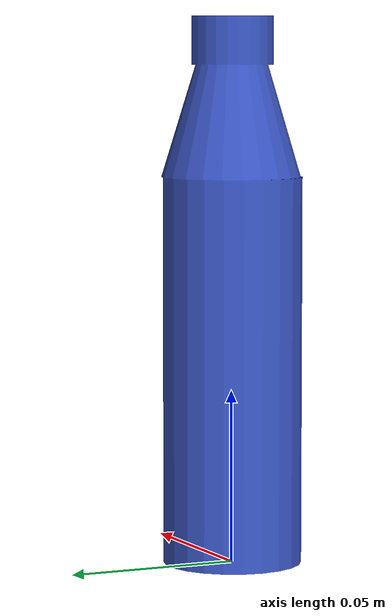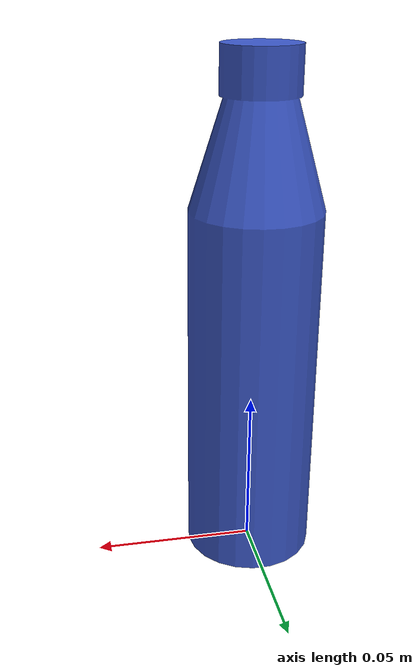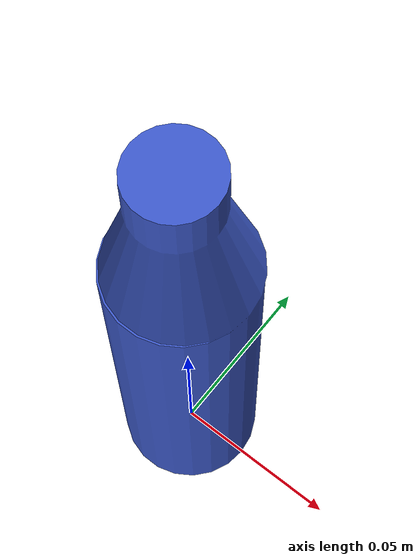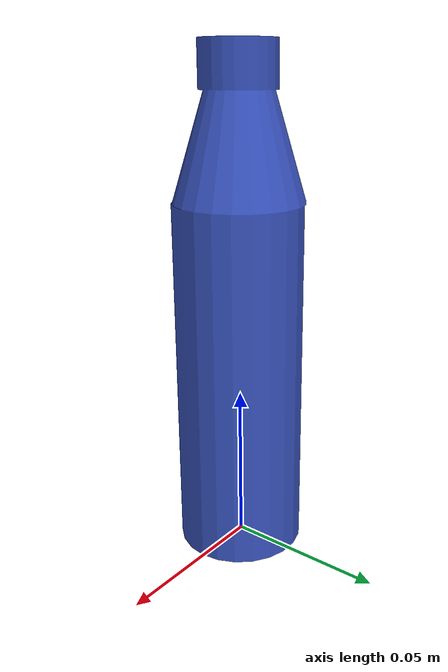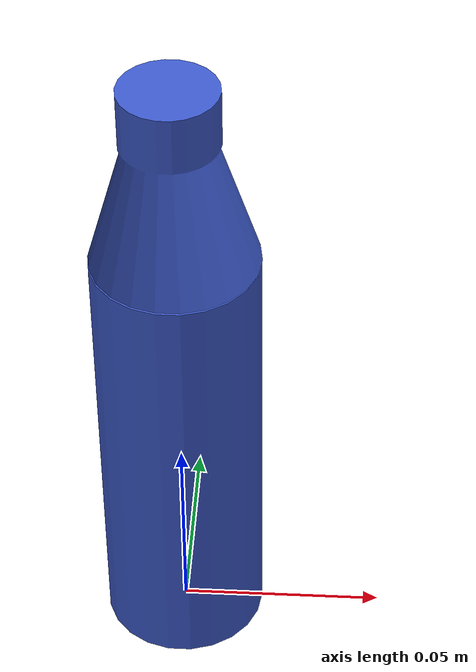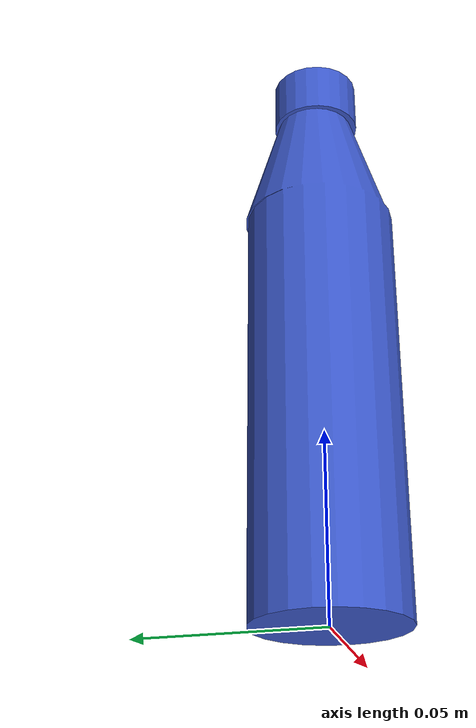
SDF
<?xml version='1.0'?>
<sdf version='1.6'>
  <model name='bottle'>
    <link name='link_0'>
      <inertial>
        <mass>0.1</mass>
        <inertia>
          <ixx>0.002436</ixx>
          <ixy>0</ixy>
          <ixz>0</ixz>
          <iyy>0.002436</iyy>
          <iyz>0</iyz>
          <izz>0.001604</izz>
        </inertia>
        <pose>0 0 0.086433 0 -0 0</pose>
      </inertial>
      <pose>0 0 0 0 -0 0</pose>
      <gravity>1</gravity>
      <self_collide>0</self_collide>
      <kinematic>0</kinematic>
      <enable_wind>0</enable_wind>
      <visual name='visual'>
        <pose>0 0 0 0 -0 0</pose>
        <geometry>
          <mesh>
            <uri>model://bottle/bottle.dae</uri>
            <scale>0.5 0.5 0.8</scale>
          </mesh>
        </geometry>
        <transparency>0</transparency>
        <cast_shadows>1</cast_shadows>
      </visual>
      <collision name='collision'>
        <laser_retro>0</laser_retro>
        <max_contacts>1000</max_contacts>
        <pose>0 0 0 0 -0 0</pose>
        <geometry>
          <mesh>
            <uri>model://bottle/bottle.dae</uri>
            <scale>0.5 0.5 0.8</scale>
          </mesh>
        </geometry>
        <surface>
          <friction>
            <ode>
              <mu>3.0</mu>
              <mu2>1.5</mu2>
            </ode>
          </friction>
        </surface>
      </collision>
    </link>
    <static>0</static>
    <allow_auto_disable>0</allow_auto_disable>
  </model>
</sdf>
